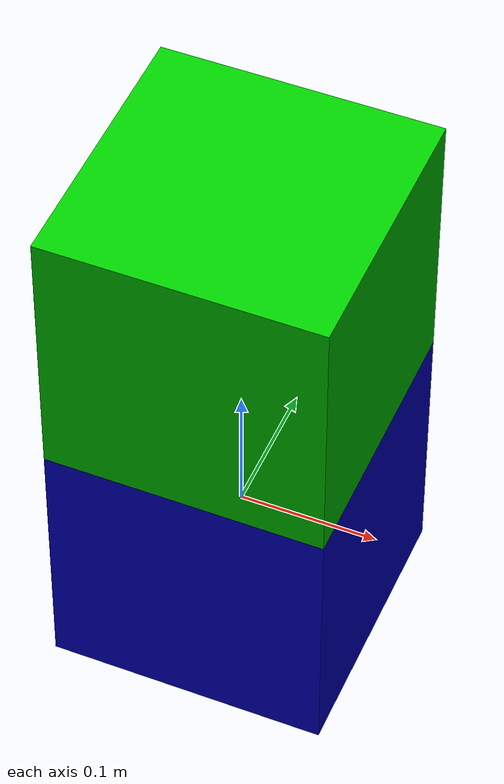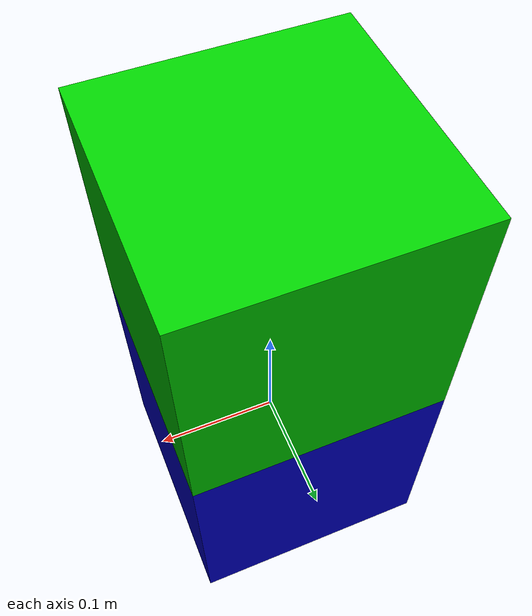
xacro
<?xml version="1.0"?>
<robot name="blocky" xmlns:xacro="http://ros.org/wiki/xacro">

  <!-- Set up some variables and defaults -->
  <xacro:property name="width" value="0.2" />
  <xacro:property name="pi" value="3.1415" />

  <material name="blue">
    <color rgba="0 0 0.8 1"/>
  </material>

  <material name="green">
    <color rgba="0 0.8 0 1"/>
  </material>

  <xacro:macro name="default_inertial" params="mass">
    <inertial>
      <mass value="${mass}" />
      <inertia ixx="1.0" ixy="0.0" ixz="0.0" iyy="1.0" iyz="0.0" izz="1.0" />
    </inertial>
  </xacro:macro>

  <!-- Define Links-->
  <link name="base_link" />

  <link name="link1">
    <visual>
      <geometry>
        <box size="${width} ${width} ${width}"/>
      </geometry>
      <material name="blue"/>
    </visual>
    <collision>
      <geometry>
        <box size="${width} ${width} ${width}"/>
      </geometry>
    </collision>
    <xacro:default_inertial mass="10"/>
  </link>

  <link name="link2">
    <visual>
      <geometry>
        <box size="${width} ${width} ${width}"/>
      </geometry>
      <material name="green"/>
    </visual>
    <collision>
      <geometry>
        <box size="${width} ${width} ${width}"/>
      </geometry>
    </collision>
    <xacro:default_inertial mass="2"/>
  </link>

  <!-- Define Joints -->
  <joint name="joint0" type="fixed">
    <parent link="base_link"/>
    <child link="link1"/>
    <axis xyz="0 0 1"/>
    <origin xyz="0 0 0"/>
  </joint>

  <joint name="joint1" type="continuous">
    <parent link="link1"/>
    <child link="link2"/>
    <axis xyz="0 0 1"/>
    <origin xyz="0 0 ${width}"/>
    <limit effort="30" velocity="10" lower="0" upper="${pi*2}"/>
  </joint>

  <!-- Define Transmissions -->
  <transmission name="joint1_trans">
    <type>transmission_interface/SimpleTransmission</type>
    <actuator name="$joint1_motor">
      <mechanicalReduction>1</mechanicalReduction>
    </actuator>
    <joint name="joint1">
      <hardwareInterface>hardware_interface/PositionJointInterface</hardwareInterface>
    </joint>
  </transmission>

  <!-- Gazebo plugin for ROS Control -->
  <gazebo>
    <plugin name="gazebo_ros_control" filename="libgazebo_ros_control.so">
      <robotNamespace>/</robotNamespace>
    </plugin>
  </gazebo>

</robot>
